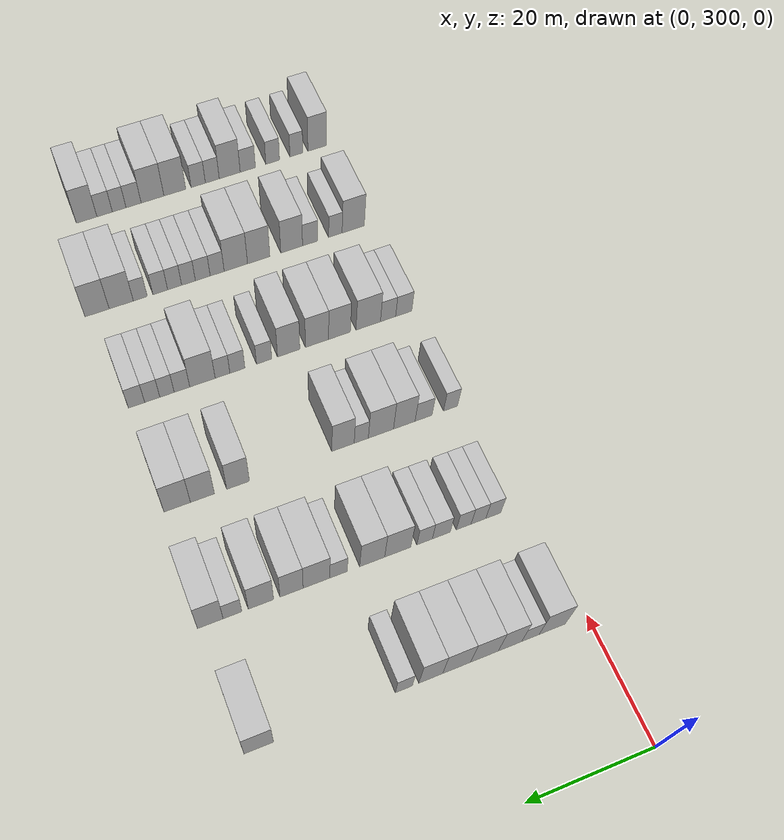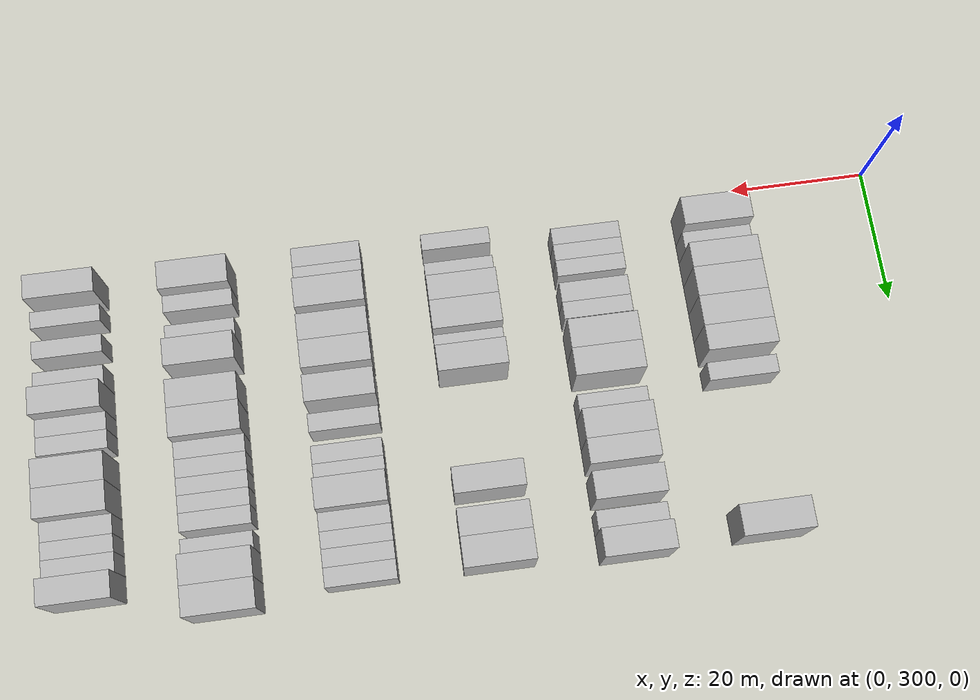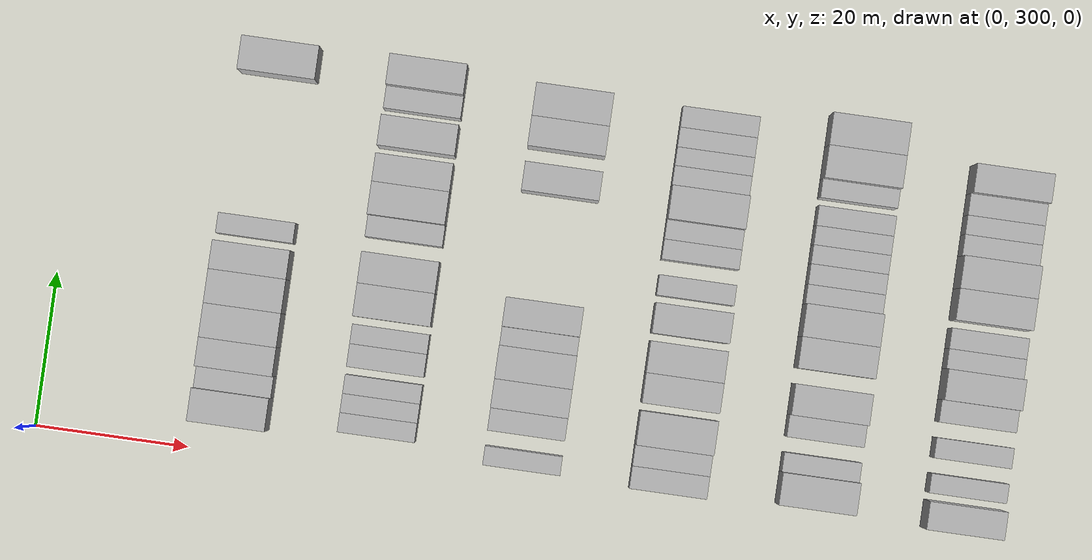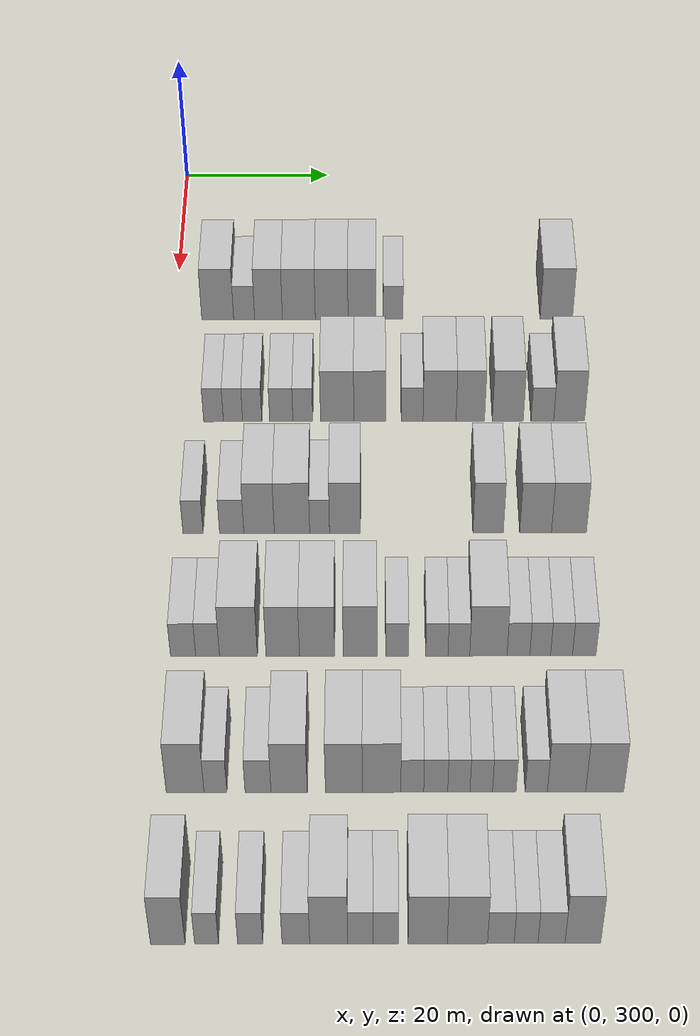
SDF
<sdf version="1.6">
 <world name="default">
  <model name="building_155">
   <static>1</static>
   <pose>25.0000 305.7245 0 0.000000 0.000000 0.000000</pose>
   <link name="link">
    <pose>0 0 4.50 0 0 0</pose>
    <collision name="collision"><geometry><box><size>10.0000 4.2542 9.0000</size></box></geometry></collision>
    <visual name="visual">
     <cast_shadows>0</cast_shadows>
     <geometry><box><size>10.0000 4.2542 9.0000</size></box></geometry>
     <material>
      <script>
       <uri>model://HANNAS_wall/materials/scripts</uri>
       <uri>model://HANNAS_wall/materials/textures</uri>
       <name>vrc/HANNAS_wall</name>
      </script>
     </material>
    </visual>
   </link>
  </model>
  <model name="building_156">
   <static>1</static>
   <pose>25.0000 309.2533 0 0.000000 0.000000 0.000000</pose>
   <link name="link">
    <pose>0 0 3.00 0 0 0</pose>
    <collision name="collision"><geometry><box><size>10.0000 2.8034 6.0000</size></box></geometry></collision>
    <visual name="visual">
     <cast_shadows>0</cast_shadows>
     <geometry><box><size>10.0000 2.8034 6.0000</size></box></geometry>
     <material>
      <script>
       <uri>model://HANNAS_wall/materials/scripts</uri>
       <uri>model://HANNAS_wall/materials/textures</uri>
       <name>vrc/HANNAS_wall</name>
      </script>
     </material>
    </visual>
   </link>
  </model>
  <model name="building_157">
   <static>1</static>
   <pose>25.0000 312.5177 0 0.000000 0.000000 0.000000</pose>
   <link name="link">
    <pose>0 0 4.50 0 0 0</pose>
    <collision name="collision"><geometry><box><size>10.0000 3.7255 9.0000</size></box></geometry></collision>
    <visual name="visual">
     <cast_shadows>0</cast_shadows>
     <geometry><box><size>10.0000 3.7255 9.0000</size></box></geometry>
     <material>
      <script>
       <uri>model://HANNAS_wall/materials/scripts</uri>
       <uri>model://HANNAS_wall/materials/textures</uri>
       <name>vrc/HANNAS_wall</name>
      </script>
     </material>
    </visual>
   </link>
  </model>
  <model name="building_158">
   <static>1</static>
   <pose>25.0000 316.5764 0 0.000000 0.000000 0.000000</pose>
   <link name="link">
    <pose>0 0 4.50 0 0 0</pose>
    <collision name="collision"><geometry><box><size>10.0000 4.3919 9.0000</size></box></geometry></collision>
    <visual name="visual">
     <cast_shadows>0</cast_shadows>
     <geometry><box><size>10.0000 4.3919 9.0000</size></box></geometry>
     <material>
      <script>
       <uri>model://HANNAS_wall/materials/scripts</uri>
       <uri>model://HANNAS_wall/materials/textures</uri>
       <name>vrc/HANNAS_wall</name>
      </script>
     </material>
    </visual>
   </link>
  </model>
  <model name="building_159">
   <static>1</static>
   <pose>25.0000 320.9627 0 0.000000 0.000000 0.000000</pose>
   <link name="link">
    <pose>0 0 4.50 0 0 0</pose>
    <collision name="collision"><geometry><box><size>10.0000 4.3807 9.0000</size></box></geometry></collision>
    <visual name="visual">
     <cast_shadows>0</cast_shadows>
     <geometry><box><size>10.0000 4.3807 9.0000</size></box></geometry>
     <material>
      <script>
       <uri>model://HANNAS_wall/materials/scripts</uri>
       <uri>model://HANNAS_wall/materials/textures</uri>
       <name>vrc/HANNAS_wall</name>
      </script>
     </material>
    </visual>
   </link>
  </model>
  <model name="building_160">
   <static>1</static>
   <pose>25.0000 325.0063 0 0.000000 0.000000 0.000000</pose>
   <link name="link">
    <pose>0 0 4.50 0 0 0</pose>
    <collision name="collision"><geometry><box><size>10.0000 3.7066 9.0000</size></box></geometry></collision>
    <visual name="visual">
     <cast_shadows>0</cast_shadows>
     <geometry><box><size>10.0000 3.7066 9.0000</size></box></geometry>
     <material>
      <script>
       <uri>model://HANNAS_wall/materials/scripts</uri>
       <uri>model://HANNAS_wall/materials/textures</uri>
       <name>vrc/HANNAS_wall</name>
      </script>
     </material>
    </visual>
   </link>
  </model>
  <model name="building_161">
   <static>1</static>
   <pose>25.0000 329.1764 0 0.000000 0.000000 0.000000</pose>
   <link name="link">
    <pose>0 0 3.00 0 0 0</pose>
    <collision name="collision"><geometry><box><size>10.0000 2.6334 6.0000</size></box></geometry></collision>
    <visual name="visual">
     <cast_shadows>0</cast_shadows>
     <geometry><box><size>10.0000 2.6334 6.0000</size></box></geometry>
     <material>
      <script>
       <uri>model://HANNAS_wall/materials/scripts</uri>
       <uri>model://HANNAS_wall/materials/textures</uri>
       <name>vrc/HANNAS_wall</name>
      </script>
     </material>
    </visual>
   </link>
  </model>
  <model name="building_162">
   <static>1</static>
   <pose>25.0000 351.0022 0 0.000000 0.000000 0.000000</pose>
   <link name="link">
    <pose>0 0 4.50 0 0 0</pose>
    <collision name="collision"><geometry><box><size>10.0000 4.3394 9.0000</size></box></geometry></collision>
    <visual name="visual">
     <cast_shadows>0</cast_shadows>
     <geometry><box><size>10.0000 4.3394 9.0000</size></box></geometry>
     <material>
      <script>
       <uri>model://HANNAS_wall/materials/scripts</uri>
       <uri>model://HANNAS_wall/materials/textures</uri>
       <name>vrc/HANNAS_wall</name>
      </script>
     </material>
    </visual>
   </link>
  </model>
  <model name="building_336">
   <static>1</static>
   <pose>44.0000 306.0727 0 0.000000 0.000000 0.000000</pose>
   <link name="link">
    <pose>0 0 3.00 0 0 0</pose>
    <collision name="collision"><geometry><box><size>10.0000 2.5162 6.0000</size></box></geometry></collision>
    <visual name="visual">
     <cast_shadows>0</cast_shadows>
     <geometry><box><size>10.0000 2.5162 6.0000</size></box></geometry>
     <material>
      <script>
       <uri>model://HANNAS_wall/materials/scripts</uri>
       <uri>model://HANNAS_wall/materials/textures</uri>
       <name>vrc/HANNAS_wall</name>
      </script>
     </material>
    </visual>
   </link>
  </model>
  <model name="building_337">
   <static>1</static>
   <pose>44.0000 308.5622 0 0.000000 0.000000 0.000000</pose>
   <link name="link">
    <pose>0 0 3.00 0 0 0</pose>
    <collision name="collision"><geometry><box><size>10.0000 2.4627 6.0000</size></box></geometry></collision>
    <visual name="visual">
     <cast_shadows>0</cast_shadows>
     <geometry><box><size>10.0000 2.4627 6.0000</size></box></geometry>
     <material>
      <script>
       <uri>model://HANNAS_wall/materials/scripts</uri>
       <uri>model://HANNAS_wall/materials/textures</uri>
       <name>vrc/HANNAS_wall</name>
      </script>
     </material>
    </visual>
   </link>
  </model>
  <model name="building_338">
   <static>1</static>
   <pose>44.0000 311.0226 0 0.000000 0.000000 0.000000</pose>
   <link name="link">
    <pose>0 0 3.00 0 0 0</pose>
    <collision name="collision"><geometry><box><size>10.0000 2.4579 6.0000</size></box></geometry></collision>
    <visual name="visual">
     <cast_shadows>0</cast_shadows>
     <geometry><box><size>10.0000 2.4579 6.0000</size></box></geometry>
     <material>
      <script>
       <uri>model://HANNAS_wall/materials/scripts</uri>
       <uri>model://HANNAS_wall/materials/textures</uri>
       <name>vrc/HANNAS_wall</name>
      </script>
     </material>
    </visual>
   </link>
  </model>
  <model name="building_339">
   <static>1</static>
   <pose>44.0000 314.7369 0 0.000000 0.000000 0.000000</pose>
   <link name="link">
    <pose>0 0 3.00 0 0 0</pose>
    <collision name="collision"><geometry><box><size>10.0000 2.9708 6.0000</size></box></geometry></collision>
    <visual name="visual">
     <cast_shadows>0</cast_shadows>
     <geometry><box><size>10.0000 2.9708 6.0000</size></box></geometry>
     <material>
      <script>
       <uri>model://HANNAS_wall/materials/scripts</uri>
       <uri>model://HANNAS_wall/materials/textures</uri>
       <name>vrc/HANNAS_wall</name>
      </script>
     </material>
    </visual>
   </link>
  </model>
  <model name="building_340">
   <static>1</static>
   <pose>44.0000 317.4918 0 0.000000 0.000000 0.000000</pose>
   <link name="link">
    <pose>0 0 3.00 0 0 0</pose>
    <collision name="collision"><geometry><box><size>10.0000 2.5388 6.0000</size></box></geometry></collision>
    <visual name="visual">
     <cast_shadows>0</cast_shadows>
     <geometry><box><size>10.0000 2.5388 6.0000</size></box></geometry>
     <material>
      <script>
       <uri>model://HANNAS_wall/materials/scripts</uri>
       <uri>model://HANNAS_wall/materials/textures</uri>
       <name>vrc/HANNAS_wall</name>
      </script>
     </material>
    </visual>
   </link>
  </model>
  <model name="building_341">
   <static>1</static>
   <pose>44.0000 321.8897 0 0.000000 0.000000 0.000000</pose>
   <link name="link">
    <pose>0 0 4.50 0 0 0</pose>
    <collision name="collision"><geometry><box><size>10.0000 4.2570 9.0000</size></box></geometry></collision>
    <visual name="visual">
     <cast_shadows>0</cast_shadows>
     <geometry><box><size>10.0000 4.2570 9.0000</size></box></geometry>
     <material>
      <script>
       <uri>model://HANNAS_wall/materials/scripts</uri>
       <uri>model://HANNAS_wall/materials/textures</uri>
       <name>vrc/HANNAS_wall</name>
      </script>
     </material>
    </visual>
   </link>
  </model>
  <model name="building_342">
   <static>1</static>
   <pose>44.0000 326.0437 0 0.000000 0.000000 0.000000</pose>
   <link name="link">
    <pose>0 0 4.50 0 0 0</pose>
    <collision name="collision"><geometry><box><size>10.0000 4.0511 9.0000</size></box></geometry></collision>
    <visual name="visual">
     <cast_shadows>0</cast_shadows>
     <geometry><box><size>10.0000 4.0511 9.0000</size></box></geometry>
     <material>
      <script>
       <uri>model://HANNAS_wall/materials/scripts</uri>
       <uri>model://HANNAS_wall/materials/textures</uri>
       <name>vrc/HANNAS_wall</name>
      </script>
     </material>
    </visual>
   </link>
  </model>
  <model name="building_343">
   <static>1</static>
   <pose>44.0000 331.4626 0 0.000000 0.000000 0.000000</pose>
   <link name="link">
    <pose>0 0 3.00 0 0 0</pose>
    <collision name="collision"><geometry><box><size>10.0000 2.7867 6.0000</size></box></geometry></collision>
    <visual name="visual">
     <cast_shadows>0</cast_shadows>
     <geometry><box><size>10.0000 2.7867 6.0000</size></box></geometry>
     <material>
      <script>
       <uri>model://HANNAS_wall/materials/scripts</uri>
       <uri>model://HANNAS_wall/materials/textures</uri>
       <name>vrc/HANNAS_wall</name>
      </script>
     </material>
    </visual>
   </link>
  </model>
  <model name="building_344">
   <static>1</static>
   <pose>44.0000 334.9705 0 0.000000 0.000000 0.000000</pose>
   <link name="link">
    <pose>0 0 4.50 0 0 0</pose>
    <collision name="collision"><geometry><box><size>10.0000 4.2290 9.0000</size></box></geometry></collision>
    <visual name="visual">
     <cast_shadows>0</cast_shadows>
     <geometry><box><size>10.0000 4.2290 9.0000</size></box></geometry>
     <material>
      <script>
       <uri>model://HANNAS_wall/materials/scripts</uri>
       <uri>model://HANNAS_wall/materials/textures</uri>
       <name>vrc/HANNAS_wall</name>
      </script>
     </material>
    </visual>
   </link>
  </model>
  <model name="building_345">
   <static>1</static>
   <pose>44.0000 338.9031 0 0.000000 0.000000 0.000000</pose>
   <link name="link">
    <pose>0 0 4.50 0 0 0</pose>
    <collision name="collision"><geometry><box><size>10.0000 3.6362 9.0000</size></box></geometry></collision>
    <visual name="visual">
     <cast_shadows>0</cast_shadows>
     <geometry><box><size>10.0000 3.6362 9.0000</size></box></geometry>
     <material>
      <script>
       <uri>model://HANNAS_wall/materials/scripts</uri>
       <uri>model://HANNAS_wall/materials/textures</uri>
       <name>vrc/HANNAS_wall</name>
      </script>
     </material>
    </visual>
   </link>
  </model>
  <model name="building_346">
   <static>1</static>
   <pose>44.0000 343.6994 0 0.000000 0.000000 0.000000</pose>
   <link name="link">
    <pose>0 0 4.50 0 0 0</pose>
    <collision name="collision"><geometry><box><size>10.0000 3.9564 9.0000</size></box></geometry></collision>
    <visual name="visual">
     <cast_shadows>0</cast_shadows>
     <geometry><box><size>10.0000 3.9564 9.0000</size></box></geometry>
     <material>
      <script>
       <uri>model://HANNAS_wall/materials/scripts</uri>
       <uri>model://HANNAS_wall/materials/textures</uri>
       <name>vrc/HANNAS_wall</name>
      </script>
     </material>
    </visual>
   </link>
  </model>
  <model name="building_347">
   <static>1</static>
   <pose>44.0000 348.1218 0 0.000000 0.000000 0.000000</pose>
   <link name="link">
    <pose>0 0 3.00 0 0 0</pose>
    <collision name="collision"><geometry><box><size>10.0000 2.8884 6.0000</size></box></geometry></collision>
    <visual name="visual">
     <cast_shadows>0</cast_shadows>
     <geometry><box><size>10.0000 2.8884 6.0000</size></box></geometry>
     <material>
      <script>
       <uri>model://HANNAS_wall/materials/scripts</uri>
       <uri>model://HANNAS_wall/materials/textures</uri>
       <name>vrc/HANNAS_wall</name>
      </script>
     </material>
    </visual>
   </link>
  </model>
  <model name="building_348">
   <static>1</static>
   <pose>44.0000 351.5423 0 0.000000 0.000000 0.000000</pose>
   <link name="link">
    <pose>0 0 4.50 0 0 0</pose>
    <collision name="collision"><geometry><box><size>10.0000 3.9525 9.0000</size></box></geometry></collision>
    <visual name="visual">
     <cast_shadows>0</cast_shadows>
     <geometry><box><size>10.0000 3.9525 9.0000</size></box></geometry>
     <material>
      <script>
       <uri>model://HANNAS_wall/materials/scripts</uri>
       <uri>model://HANNAS_wall/materials/textures</uri>
       <name>vrc/HANNAS_wall</name>
      </script>
     </material>
    </visual>
   </link>
  </model>
  <model name="building_513">
   <static>1</static>
   <pose>63.0000 304.4875 0 0.000000 0.000000 0.000000</pose>
   <link name="link">
    <pose>0 0 3.00 0 0 0</pose>
    <collision name="collision"><geometry><box><size>10.0000 2.4692 6.0000</size></box></geometry></collision>
    <visual name="visual">
     <cast_shadows>0</cast_shadows>
     <geometry><box><size>10.0000 2.4692 6.0000</size></box></geometry>
     <material>
      <script>
       <uri>model://HANNAS_wall/materials/scripts</uri>
       <uri>model://HANNAS_wall/materials/textures</uri>
       <name>vrc/HANNAS_wall</name>
      </script>
     </material>
    </visual>
   </link>
  </model>
  <model name="building_514">
   <static>1</static>
   <pose>63.0000 309.2000 0 0.000000 0.000000 0.000000</pose>
   <link name="link">
    <pose>0 0 3.00 0 0 0</pose>
    <collision name="collision"><geometry><box><size>10.0000 2.9557 6.0000</size></box></geometry></collision>
    <visual name="visual">
     <cast_shadows>0</cast_shadows>
     <geometry><box><size>10.0000 2.9557 6.0000</size></box></geometry>
     <material>
      <script>
       <uri>model://HANNAS_wall/materials/scripts</uri>
       <uri>model://HANNAS_wall/materials/textures</uri>
       <name>vrc/HANNAS_wall</name>
      </script>
     </material>
    </visual>
   </link>
  </model>
  <model name="building_515">
   <static>1</static>
   <pose>63.0000 312.5431 0 0.000000 0.000000 0.000000</pose>
   <link name="link">
    <pose>0 0 4.50 0 0 0</pose>
    <collision name="collision"><geometry><box><size>10.0000 3.7305 9.0000</size></box></geometry></collision>
    <visual name="visual">
     <cast_shadows>0</cast_shadows>
     <geometry><box><size>10.0000 3.7305 9.0000</size></box></geometry>
     <material>
      <script>
       <uri>model://HANNAS_wall/materials/scripts</uri>
       <uri>model://HANNAS_wall/materials/textures</uri>
       <name>vrc/HANNAS_wall</name>
      </script>
     </material>
    </visual>
   </link>
  </model>
  <model name="building_516">
   <static>1</static>
   <pose>63.0000 316.5634 0 0.000000 0.000000 0.000000</pose>
   <link name="link">
    <pose>0 0 4.50 0 0 0</pose>
    <collision name="collision"><geometry><box><size>10.0000 4.3101 9.0000</size></box></geometry></collision>
    <visual name="visual">
     <cast_shadows>0</cast_shadows>
     <geometry><box><size>10.0000 4.3101 9.0000</size></box></geometry>
     <material>
      <script>
       <uri>model://HANNAS_wall/materials/scripts</uri>
       <uri>model://HANNAS_wall/materials/textures</uri>
       <name>vrc/HANNAS_wall</name>
      </script>
     </material>
    </visual>
   </link>
  </model>
  <model name="building_517">
   <static>1</static>
   <pose>63.0000 319.9247 0 0.000000 0.000000 0.000000</pose>
   <link name="link">
    <pose>0 0 3.00 0 0 0</pose>
    <collision name="collision"><geometry><box><size>10.0000 2.4125 6.0000</size></box></geometry></collision>
    <visual name="visual">
     <cast_shadows>0</cast_shadows>
     <geometry><box><size>10.0000 2.4125 6.0000</size></box></geometry>
     <material>
      <script>
       <uri>model://HANNAS_wall/materials/scripts</uri>
       <uri>model://HANNAS_wall/materials/textures</uri>
       <name>vrc/HANNAS_wall</name>
      </script>
     </material>
    </visual>
   </link>
  </model>
  <model name="building_518">
   <static>1</static>
   <pose>63.0000 323.0245 0 0.000000 0.000000 0.000000</pose>
   <link name="link">
    <pose>0 0 4.50 0 0 0</pose>
    <collision name="collision"><geometry><box><size>10.0000 3.7870 9.0000</size></box></geometry></collision>
    <visual name="visual">
     <cast_shadows>0</cast_shadows>
     <geometry><box><size>10.0000 3.7870 9.0000</size></box></geometry>
     <material>
      <script>
       <uri>model://HANNAS_wall/materials/scripts</uri>
       <uri>model://HANNAS_wall/materials/textures</uri>
       <name>vrc/HANNAS_wall</name>
      </script>
     </material>
    </visual>
   </link>
  </model>
  <model name="building_519">
   <static>1</static>
   <pose>63.0000 340.4865 0 0.000000 0.000000 0.000000</pose>
   <link name="link">
    <pose>0 0 4.50 0 0 0</pose>
    <collision name="collision"><geometry><box><size>10.0000 3.7123 9.0000</size></box></geometry></collision>
    <visual name="visual">
     <cast_shadows>0</cast_shadows>
     <geometry><box><size>10.0000 3.7123 9.0000</size></box></geometry>
     <material>
      <script>
       <uri>model://HANNAS_wall/materials/scripts</uri>
       <uri>model://HANNAS_wall/materials/textures</uri>
       <name>vrc/HANNAS_wall</name>
      </script>
     </material>
    </visual>
   </link>
  </model>
  <model name="building_520">
   <static>1</static>
   <pose>63.0000 346.2822 0 0.000000 0.000000 0.000000</pose>
   <link name="link">
    <pose>0 0 4.50 0 0 0</pose>
    <collision name="collision"><geometry><box><size>10.0000 3.8791 9.0000</size></box></geometry></collision>
    <visual name="visual">
     <cast_shadows>0</cast_shadows>
     <geometry><box><size>10.0000 3.8791 9.0000</size></box></geometry>
     <material>
      <script>
       <uri>model://HANNAS_wall/materials/scripts</uri>
       <uri>model://HANNAS_wall/materials/textures</uri>
       <name>vrc/HANNAS_wall</name>
      </script>
     </material>
    </visual>
   </link>
  </model>
  <model name="building_521">
   <static>1</static>
   <pose>63.0000 350.3517 0 0.000000 0.000000 0.000000</pose>
   <link name="link">
    <pose>0 0 4.50 0 0 0</pose>
    <collision name="collision"><geometry><box><size>10.0000 4.2598 9.0000</size></box></geometry></collision>
    <visual name="visual">
     <cast_shadows>0</cast_shadows>
     <geometry><box><size>10.0000 4.2598 9.0000</size></box></geometry>
     <material>
      <script>
       <uri>model://HANNAS_wall/materials/scripts</uri>
       <uri>model://HANNAS_wall/materials/textures</uri>
       <name>vrc/HANNAS_wall</name>
      </script>
     </material>
    </visual>
   </link>
  </model>
  <model name="building_657">
   <static>1</static>
   <pose>82.0000 304.3663 0 0.000000 0.000000 0.000000</pose>
   <link name="link">
    <pose>0 0 3.00 0 0 0</pose>
    <collision name="collision"><geometry><box><size>10.0000 2.9287 6.0000</size></box></geometry></collision>
    <visual name="visual">
     <cast_shadows>0</cast_shadows>
     <geometry><box><size>10.0000 2.9287 6.0000</size></box></geometry>
     <material>
      <script>
       <uri>model://HANNAS_wall/materials/scripts</uri>
       <uri>model://HANNAS_wall/materials/textures</uri>
       <name>vrc/HANNAS_wall</name>
      </script>
     </material>
    </visual>
   </link>
  </model>
  <model name="building_658">
   <static>1</static>
   <pose>82.0000 307.2067 0 0.000000 0.000000 0.000000</pose>
   <link name="link">
    <pose>0 0 3.00 0 0 0</pose>
    <collision name="collision"><geometry><box><size>10.0000 2.7522 6.0000</size></box></geometry></collision>
    <visual name="visual">
     <cast_shadows>0</cast_shadows>
     <geometry><box><size>10.0000 2.7522 6.0000</size></box></geometry>
     <material>
      <script>
       <uri>model://HANNAS_wall/materials/scripts</uri>
       <uri>model://HANNAS_wall/materials/textures</uri>
       <name>vrc/HANNAS_wall</name>
      </script>
     </material>
    </visual>
   </link>
  </model>
  <model name="building_659">
   <static>1</static>
   <pose>82.0000 310.7891 0 0.000000 0.000000 0.000000</pose>
   <link name="link">
    <pose>0 0 4.50 0 0 0</pose>
    <collision name="collision"><geometry><box><size>10.0000 4.4125 9.0000</size></box></geometry></collision>
    <visual name="visual">
     <cast_shadows>0</cast_shadows>
     <geometry><box><size>10.0000 4.4125 9.0000</size></box></geometry>
     <material>
      <script>
       <uri>model://HANNAS_wall/materials/scripts</uri>
       <uri>model://HANNAS_wall/materials/textures</uri>
       <name>vrc/HANNAS_wall</name>
      </script>
     </material>
    </visual>
   </link>
  </model>
  <model name="building_660">
   <static>1</static>
   <pose>82.0000 315.9378 0 0.000000 0.000000 0.000000</pose>
   <link name="link">
    <pose>0 0 4.50 0 0 0</pose>
    <collision name="collision"><geometry><box><size>10.0000 3.8849 9.0000</size></box></geometry></collision>
    <visual name="visual">
     <cast_shadows>0</cast_shadows>
     <geometry><box><size>10.0000 3.8849 9.0000</size></box></geometry>
     <material>
      <script>
       <uri>model://HANNAS_wall/materials/scripts</uri>
       <uri>model://HANNAS_wall/materials/textures</uri>
       <name>vrc/HANNAS_wall</name>
      </script>
     </material>
    </visual>
   </link>
  </model>
  <model name="building_661">
   <static>1</static>
   <pose>82.0000 319.9224 0 0.000000 0.000000 0.000000</pose>
   <link name="link">
    <pose>0 0 4.50 0 0 0</pose>
    <collision name="collision"><geometry><box><size>10.0000 4.0842 9.0000</size></box></geometry></collision>
    <visual name="visual">
     <cast_shadows>0</cast_shadows>
     <geometry><box><size>10.0000 4.0842 9.0000</size></box></geometry>
     <material>
      <script>
       <uri>model://HANNAS_wall/materials/scripts</uri>
       <uri>model://HANNAS_wall/materials/textures</uri>
       <name>vrc/HANNAS_wall</name>
      </script>
     </material>
    </visual>
   </link>
  </model>
  <model name="building_662">
   <static>1</static>
   <pose>82.0000 324.9201 0 0.000000 0.000000 0.000000</pose>
   <link name="link">
    <pose>0 0 4.50 0 0 0</pose>
    <collision name="collision"><geometry><box><size>10.0000 3.9114 9.0000</size></box></geometry></collision>
    <visual name="visual">
     <cast_shadows>0</cast_shadows>
     <geometry><box><size>10.0000 3.9114 9.0000</size></box></geometry>
     <material>
      <script>
       <uri>model://HANNAS_wall/materials/scripts</uri>
       <uri>model://HANNAS_wall/materials/textures</uri>
       <name>vrc/HANNAS_wall</name>
      </script>
     </material>
    </visual>
   </link>
  </model>
  <model name="building_663">
   <static>1</static>
   <pose>82.0000 329.2005 0 0.000000 0.000000 0.000000</pose>
   <link name="link">
    <pose>0 0 3.00 0 0 0</pose>
    <collision name="collision"><geometry><box><size>10.0000 2.6493 6.0000</size></box></geometry></collision>
    <visual name="visual">
     <cast_shadows>0</cast_shadows>
     <geometry><box><size>10.0000 2.6493 6.0000</size></box></geometry>
     <material>
      <script>
       <uri>model://HANNAS_wall/materials/scripts</uri>
       <uri>model://HANNAS_wall/materials/textures</uri>
       <name>vrc/HANNAS_wall</name>
      </script>
     </material>
    </visual>
   </link>
  </model>
  <model name="building_664">
   <static>1</static>
   <pose>82.0000 333.8204 0 0.000000 0.000000 0.000000</pose>
   <link name="link">
    <pose>0 0 3.00 0 0 0</pose>
    <collision name="collision"><geometry><box><size>10.0000 2.5904 6.0000</size></box></geometry></collision>
    <visual name="visual">
     <cast_shadows>0</cast_shadows>
     <geometry><box><size>10.0000 2.5904 6.0000</size></box></geometry>
     <material>
      <script>
       <uri>model://HANNAS_wall/materials/scripts</uri>
       <uri>model://HANNAS_wall/materials/textures</uri>
       <name>vrc/HANNAS_wall</name>
      </script>
     </material>
    </visual>
   </link>
  </model>
  <model name="building_665">
   <static>1</static>
   <pose>82.0000 336.3810 0 0.000000 0.000000 0.000000</pose>
   <link name="link">
    <pose>0 0 3.00 0 0 0</pose>
    <collision name="collision"><geometry><box><size>10.0000 2.5309 6.0000</size></box></geometry></collision>
    <visual name="visual">
     <cast_shadows>0</cast_shadows>
     <geometry><box><size>10.0000 2.5309 6.0000</size></box></geometry>
     <material>
      <script>
       <uri>model://HANNAS_wall/materials/scripts</uri>
       <uri>model://HANNAS_wall/materials/textures</uri>
       <name>vrc/HANNAS_wall</name>
      </script>
     </material>
    </visual>
   </link>
  </model>
  <model name="building_666">
   <static>1</static>
   <pose>82.0000 339.8150 0 0.000000 0.000000 0.000000</pose>
   <link name="link">
    <pose>0 0 4.50 0 0 0</pose>
    <collision name="collision"><geometry><box><size>10.0000 4.3370 9.0000</size></box></geometry></collision>
    <visual name="visual">
     <cast_shadows>0</cast_shadows>
     <geometry><box><size>10.0000 4.3370 9.0000</size></box></geometry>
     <material>
      <script>
       <uri>model://HANNAS_wall/materials/scripts</uri>
       <uri>model://HANNAS_wall/materials/textures</uri>
       <name>vrc/HANNAS_wall</name>
      </script>
     </material>
    </visual>
   </link>
  </model>
  <model name="building_667">
   <static>1</static>
   <pose>82.0000 343.3057 0 0.000000 0.000000 0.000000</pose>
   <link name="link">
    <pose>0 0 3.00 0 0 0</pose>
    <collision name="collision"><geometry><box><size>10.0000 2.6445 6.0000</size></box></geometry></collision>
    <visual name="visual">
     <cast_shadows>0</cast_shadows>
     <geometry><box><size>10.0000 2.6445 6.0000</size></box></geometry>
     <material>
      <script>
       <uri>model://HANNAS_wall/materials/scripts</uri>
       <uri>model://HANNAS_wall/materials/textures</uri>
       <name>vrc/HANNAS_wall</name>
      </script>
     </material>
    </visual>
   </link>
  </model>
  <model name="building_668">
   <static>1</static>
   <pose>82.0000 345.8326 0 0.000000 0.000000 0.000000</pose>
   <link name="link">
    <pose>0 0 3.00 0 0 0</pose>
    <collision name="collision"><geometry><box><size>10.0000 2.4094 6.0000</size></box></geometry></collision>
    <visual name="visual">
     <cast_shadows>0</cast_shadows>
     <geometry><box><size>10.0000 2.4094 6.0000</size></box></geometry>
     <material>
      <script>
       <uri>model://HANNAS_wall/materials/scripts</uri>
       <uri>model://HANNAS_wall/materials/textures</uri>
       <name>vrc/HANNAS_wall</name>
      </script>
     </material>
    </visual>
   </link>
  </model>
  <model name="building_669">
   <static>1</static>
   <pose>82.0000 348.3094 0 0.000000 0.000000 0.000000</pose>
   <link name="link">
    <pose>0 0 3.00 0 0 0</pose>
    <collision name="collision"><geometry><box><size>10.0000 2.5441 6.0000</size></box></geometry></collision>
    <visual name="visual">
     <cast_shadows>0</cast_shadows>
     <geometry><box><size>10.0000 2.5441 6.0000</size></box></geometry>
     <material>
      <script>
       <uri>model://HANNAS_wall/materials/scripts</uri>
       <uri>model://HANNAS_wall/materials/textures</uri>
       <name>vrc/HANNAS_wall</name>
      </script>
     </material>
    </visual>
   </link>
  </model>
  <model name="building_670">
   <static>1</static>
   <pose>82.0000 350.9490 0 0.000000 0.000000 0.000000</pose>
   <link name="link">
    <pose>0 0 3.00 0 0 0</pose>
    <collision name="collision"><geometry><box><size>10.0000 2.7351 6.0000</size></box></geometry></collision>
    <visual name="visual">
     <cast_shadows>0</cast_shadows>
     <geometry><box><size>10.0000 2.7351 6.0000</size></box></geometry>
     <material>
      <script>
       <uri>model://HANNAS_wall/materials/scripts</uri>
       <uri>model://HANNAS_wall/materials/textures</uri>
       <name>vrc/HANNAS_wall</name>
      </script>
     </material>
    </visual>
   </link>
  </model>
  <model name="building_831">
   <static>1</static>
   <pose>101.0000 305.6730 0 0.000000 0.000000 0.000000</pose>
   <link name="link">
    <pose>0 0 4.50 0 0 0</pose>
    <collision name="collision"><geometry><box><size>10.0000 4.1735 9.0000</size></box></geometry></collision>
    <visual name="visual">
     <cast_shadows>0</cast_shadows>
     <geometry><box><size>10.0000 4.1735 9.0000</size></box></geometry>
     <material>
      <script>
       <uri>model://HANNAS_wall/materials/scripts</uri>
       <uri>model://HANNAS_wall/materials/textures</uri>
       <name>vrc/HANNAS_wall</name>
      </script>
     </material>
    </visual>
   </link>
  </model>
  <model name="building_832">
   <static>1</static>
   <pose>101.0000 309.0195 0 0.000000 0.000000 0.000000</pose>
   <link name="link">
    <pose>0 0 3.00 0 0 0</pose>
    <collision name="collision"><geometry><box><size>10.0000 2.5196 6.0000</size></box></geometry></collision>
    <visual name="visual">
     <cast_shadows>0</cast_shadows>
     <geometry><box><size>10.0000 2.5196 6.0000</size></box></geometry>
     <material>
      <script>
       <uri>model://HANNAS_wall/materials/scripts</uri>
       <uri>model://HANNAS_wall/materials/textures</uri>
       <name>vrc/HANNAS_wall</name>
      </script>
     </material>
    </visual>
   </link>
  </model>
  <model name="building_833">
   <static>1</static>
   <pose>101.0000 313.7081 0 0.000000 0.000000 0.000000</pose>
   <link name="link">
    <pose>0 0 3.00 0 0 0</pose>
    <collision name="collision"><geometry><box><size>10.0000 2.8575 6.0000</size></box></geometry></collision>
    <visual name="visual">
     <cast_shadows>0</cast_shadows>
     <geometry><box><size>10.0000 2.8575 6.0000</size></box></geometry>
     <material>
      <script>
       <uri>model://HANNAS_wall/materials/scripts</uri>
       <uri>model://HANNAS_wall/materials/textures</uri>
       <name>vrc/HANNAS_wall</name>
      </script>
     </material>
    </visual>
   </link>
  </model>
  <model name="building_834">
   <static>1</static>
   <pose>101.0000 317.1416 0 0.000000 0.000000 0.000000</pose>
   <link name="link">
    <pose>0 0 4.50 0 0 0</pose>
    <collision name="collision"><geometry><box><size>10.0000 4.0095 9.0000</size></box></geometry></collision>
    <visual name="visual">
     <cast_shadows>0</cast_shadows>
     <geometry><box><size>10.0000 4.0095 9.0000</size></box></geometry>
     <material>
      <script>
       <uri>model://HANNAS_wall/materials/scripts</uri>
       <uri>model://HANNAS_wall/materials/textures</uri>
       <name>vrc/HANNAS_wall</name>
      </script>
     </material>
    </visual>
   </link>
  </model>
  <model name="building_835">
   <static>1</static>
   <pose>101.0000 323.1811 0 0.000000 0.000000 0.000000</pose>
   <link name="link">
    <pose>0 0 4.50 0 0 0</pose>
    <collision name="collision"><geometry><box><size>10.0000 4.0695 9.0000</size></box></geometry></collision>
    <visual name="visual">
     <cast_shadows>0</cast_shadows>
     <geometry><box><size>10.0000 4.0695 9.0000</size></box></geometry>
     <material>
      <script>
       <uri>model://HANNAS_wall/materials/scripts</uri>
       <uri>model://HANNAS_wall/materials/textures</uri>
       <name>vrc/HANNAS_wall</name>
      </script>
     </material>
    </visual>
   </link>
  </model>
  <model name="building_836">
   <static>1</static>
   <pose>101.0000 327.3324 0 0.000000 0.000000 0.000000</pose>
   <link name="link">
    <pose>0 0 4.50 0 0 0</pose>
    <collision name="collision"><geometry><box><size>10.0000 4.2331 9.0000</size></box></geometry></collision>
    <visual name="visual">
     <cast_shadows>0</cast_shadows>
     <geometry><box><size>10.0000 4.2331 9.0000</size></box></geometry>
     <material>
      <script>
       <uri>model://HANNAS_wall/materials/scripts</uri>
       <uri>model://HANNAS_wall/materials/textures</uri>
       <name>vrc/HANNAS_wall</name>
      </script>
     </material>
    </visual>
   </link>
  </model>
  <model name="building_837">
   <static>1</static>
   <pose>101.0000 330.7132 0 0.000000 0.000000 0.000000</pose>
   <link name="link">
    <pose>0 0 3.00 0 0 0</pose>
    <collision name="collision"><geometry><box><size>10.0000 2.5285 6.0000</size></box></geometry></collision>
    <visual name="visual">
     <cast_shadows>0</cast_shadows>
     <geometry><box><size>10.0000 2.5285 6.0000</size></box></geometry>
     <material>
      <script>
       <uri>model://HANNAS_wall/materials/scripts</uri>
       <uri>model://HANNAS_wall/materials/textures</uri>
       <name>vrc/HANNAS_wall</name>
      </script>
     </material>
    </visual>
   </link>
  </model>
  <model name="building_838">
   <static>1</static>
   <pose>101.0000 333.3001 0 0.000000 0.000000 0.000000</pose>
   <link name="link">
    <pose>0 0 3.00 0 0 0</pose>
    <collision name="collision"><geometry><box><size>10.0000 2.6453 6.0000</size></box></geometry></collision>
    <visual name="visual">
     <cast_shadows>0</cast_shadows>
     <geometry><box><size>10.0000 2.6453 6.0000</size></box></geometry>
     <material>
      <script>
       <uri>model://HANNAS_wall/materials/scripts</uri>
       <uri>model://HANNAS_wall/materials/textures</uri>
       <name>vrc/HANNAS_wall</name>
      </script>
     </material>
    </visual>
   </link>
  </model>
  <model name="building_839">
   <static>1</static>
   <pose>101.0000 335.8524 0 0.000000 0.000000 0.000000</pose>
   <link name="link">
    <pose>0 0 3.00 0 0 0</pose>
    <collision name="collision"><geometry><box><size>10.0000 2.4593 6.0000</size></box></geometry></collision>
    <visual name="visual">
     <cast_shadows>0</cast_shadows>
     <geometry><box><size>10.0000 2.4593 6.0000</size></box></geometry>
     <material>
      <script>
       <uri>model://HANNAS_wall/materials/scripts</uri>
       <uri>model://HANNAS_wall/materials/textures</uri>
       <name>vrc/HANNAS_wall</name>
      </script>
     </material>
    </visual>
   </link>
  </model>
  <model name="building_840">
   <static>1</static>
   <pose>101.0000 338.3228 0 0.000000 0.000000 0.000000</pose>
   <link name="link">
    <pose>0 0 3.00 0 0 0</pose>
    <collision name="collision"><geometry><box><size>10.0000 2.4814 6.0000</size></box></geometry></collision>
    <visual name="visual">
     <cast_shadows>0</cast_shadows>
     <geometry><box><size>10.0000 2.4814 6.0000</size></box></geometry>
     <material>
      <script>
       <uri>model://HANNAS_wall/materials/scripts</uri>
       <uri>model://HANNAS_wall/materials/textures</uri>
       <name>vrc/HANNAS_wall</name>
      </script>
     </material>
    </visual>
   </link>
  </model>
  <model name="building_841">
   <static>1</static>
   <pose>101.0000 340.8645 0 0.000000 0.000000 0.000000</pose>
   <link name="link">
    <pose>0 0 3.00 0 0 0</pose>
    <collision name="collision"><geometry><box><size>10.0000 2.6020 6.0000</size></box></geometry></collision>
    <visual name="visual">
     <cast_shadows>0</cast_shadows>
     <geometry><box><size>10.0000 2.6020 6.0000</size></box></geometry>
     <material>
      <script>
       <uri>model://HANNAS_wall/materials/scripts</uri>
       <uri>model://HANNAS_wall/materials/textures</uri>
       <name>vrc/HANNAS_wall</name>
      </script>
     </material>
    </visual>
   </link>
  </model>
  <model name="building_842">
   <static>1</static>
   <pose>101.0000 344.3912 0 0.000000 0.000000 0.000000</pose>
   <link name="link">
    <pose>0 0 3.00 0 0 0</pose>
    <collision name="collision"><geometry><box><size>10.0000 2.4513 6.0000</size></box></geometry></collision>
    <visual name="visual">
     <cast_shadows>0</cast_shadows>
     <geometry><box><size>10.0000 2.4513 6.0000</size></box></geometry>
     <material>
      <script>
       <uri>model://HANNAS_wall/materials/scripts</uri>
       <uri>model://HANNAS_wall/materials/textures</uri>
       <name>vrc/HANNAS_wall</name>
      </script>
     </material>
    </visual>
   </link>
  </model>
  <model name="building_843">
   <static>1</static>
   <pose>101.0000 347.7279 0 0.000000 0.000000 0.000000</pose>
   <link name="link">
    <pose>0 0 4.50 0 0 0</pose>
    <collision name="collision"><geometry><box><size>10.0000 4.2222 9.0000</size></box></geometry></collision>
    <visual name="visual">
     <cast_shadows>0</cast_shadows>
     <geometry><box><size>10.0000 4.2222 9.0000</size></box></geometry>
     <material>
      <script>
       <uri>model://HANNAS_wall/materials/scripts</uri>
       <uri>model://HANNAS_wall/materials/textures</uri>
       <name>vrc/HANNAS_wall</name>
      </script>
     </material>
    </visual>
   </link>
  </model>
  <model name="building_844">
   <static>1</static>
   <pose>101.0000 351.9394 0 0.000000 0.000000 0.000000</pose>
   <link name="link">
    <pose>0 0 4.50 0 0 0</pose>
    <collision name="collision"><geometry><box><size>10.0000 4.2007 9.0000</size></box></geometry></collision>
    <visual name="visual">
     <cast_shadows>0</cast_shadows>
     <geometry><box><size>10.0000 4.2007 9.0000</size></box></geometry>
     <material>
      <script>
       <uri>model://HANNAS_wall/materials/scripts</uri>
       <uri>model://HANNAS_wall/materials/textures</uri>
       <name>vrc/HANNAS_wall</name>
      </script>
     </material>
    </visual>
   </link>
  </model>
  <model name="building_994">
   <static>1</static>
   <pose>120.0000 304.9381 0 0.000000 0.000000 0.000000</pose>
   <link name="link">
    <pose>0 0 4.50 0 0 0</pose>
    <collision name="collision"><geometry><box><size>10.0000 3.6097 9.0000</size></box></geometry></collision>
    <visual name="visual">
     <cast_shadows>0</cast_shadows>
     <geometry><box><size>10.0000 3.6097 9.0000</size></box></geometry>
     <material>
      <script>
       <uri>model://HANNAS_wall/materials/scripts</uri>
       <uri>model://HANNAS_wall/materials/textures</uri>
       <name>vrc/HANNAS_wall</name>
      </script>
     </material>
    </visual>
   </link>
  </model>
  <model name="building_995">
   <static>1</static>
   <pose>120.0000 308.9890 0 0.000000 0.000000 0.000000</pose>
   <link name="link">
    <pose>0 0 3.00 0 0 0</pose>
    <collision name="collision"><geometry><box><size>10.0000 2.4920 6.0000</size></box></geometry></collision>
    <visual name="visual">
     <cast_shadows>0</cast_shadows>
     <geometry><box><size>10.0000 2.4920 6.0000</size></box></geometry>
     <material>
      <script>
       <uri>model://HANNAS_wall/materials/scripts</uri>
       <uri>model://HANNAS_wall/materials/textures</uri>
       <name>vrc/HANNAS_wall</name>
      </script>
     </material>
    </visual>
   </link>
  </model>
  <model name="building_996">
   <static>1</static>
   <pose>120.0000 313.5491 0 0.000000 0.000000 0.000000</pose>
   <link name="link">
    <pose>0 0 3.00 0 0 0</pose>
    <collision name="collision"><geometry><box><size>10.0000 2.6283 6.0000</size></box></geometry></collision>
    <visual name="visual">
     <cast_shadows>0</cast_shadows>
     <geometry><box><size>10.0000 2.6283 6.0000</size></box></geometry>
     <material>
      <script>
       <uri>model://HANNAS_wall/materials/scripts</uri>
       <uri>model://HANNAS_wall/materials/textures</uri>
       <name>vrc/HANNAS_wall</name>
      </script>
     </material>
    </visual>
   </link>
  </model>
  <model name="building_997">
   <static>1</static>
   <pose>120.0000 318.3101 0 0.000000 0.000000 0.000000</pose>
   <link name="link">
    <pose>0 0 3.00 0 0 0</pose>
    <collision name="collision"><geometry><box><size>10.0000 2.8937 6.0000</size></box></geometry></collision>
    <visual name="visual">
     <cast_shadows>0</cast_shadows>
     <geometry><box><size>10.0000 2.8937 6.0000</size></box></geometry>
     <material>
      <script>
       <uri>model://HANNAS_wall/materials/scripts</uri>
       <uri>model://HANNAS_wall/materials/textures</uri>
       <name>vrc/HANNAS_wall</name>
      </script>
     </material>
    </visual>
   </link>
  </model>
  <model name="building_998">
   <static>1</static>
   <pose>120.0000 321.7432 0 0.000000 0.000000 0.000000</pose>
   <link name="link">
    <pose>0 0 4.50 0 0 0</pose>
    <collision name="collision"><geometry><box><size>10.0000 3.9725 9.0000</size></box></geometry></collision>
    <visual name="visual">
     <cast_shadows>0</cast_shadows>
     <geometry><box><size>10.0000 3.9725 9.0000</size></box></geometry>
     <material>
      <script>
       <uri>model://HANNAS_wall/materials/scripts</uri>
       <uri>model://HANNAS_wall/materials/textures</uri>
       <name>vrc/HANNAS_wall</name>
      </script>
     </material>
    </visual>
   </link>
  </model>
  <model name="building_999">
   <static>1</static>
   <pose>120.0000 325.0367 0 0.000000 0.000000 0.000000</pose>
   <link name="link">
    <pose>0 0 3.00 0 0 0</pose>
    <collision name="collision"><geometry><box><size>10.0000 2.6145 6.0000</size></box></geometry></collision>
    <visual name="visual">
     <cast_shadows>0</cast_shadows>
     <geometry><box><size>10.0000 2.6145 6.0000</size></box></geometry>
     <material>
      <script>
       <uri>model://HANNAS_wall/materials/scripts</uri>
       <uri>model://HANNAS_wall/materials/textures</uri>
       <name>vrc/HANNAS_wall</name>
      </script>
     </material>
    </visual>
   </link>
  </model>
  <model name="building_1000">
   <static>1</static>
   <pose>120.0000 327.6834 0 0.000000 0.000000 0.000000</pose>
   <link name="link">
    <pose>0 0 3.00 0 0 0</pose>
    <collision name="collision"><geometry><box><size>10.0000 2.6789 6.0000</size></box></geometry></collision>
    <visual name="visual">
     <cast_shadows>0</cast_shadows>
     <geometry><box><size>10.0000 2.6789 6.0000</size></box></geometry>
     <material>
      <script>
       <uri>model://HANNAS_wall/materials/scripts</uri>
       <uri>model://HANNAS_wall/materials/textures</uri>
       <name>vrc/HANNAS_wall</name>
      </script>
     </material>
    </visual>
   </link>
  </model>
  <model name="building_1001">
   <static>1</static>
   <pose>120.0000 332.0668 0 0.000000 0.000000 0.000000</pose>
   <link name="link">
    <pose>0 0 4.50 0 0 0</pose>
    <collision name="collision"><geometry><box><size>10.0000 4.0879 9.0000</size></box></geometry></collision>
    <visual name="visual">
     <cast_shadows>0</cast_shadows>
     <geometry><box><size>10.0000 4.0879 9.0000</size></box></geometry>
     <material>
      <script>
       <uri>model://HANNAS_wall/materials/scripts</uri>
       <uri>model://HANNAS_wall/materials/textures</uri>
       <name>vrc/HANNAS_wall</name>
      </script>
     </material>
    </visual>
   </link>
  </model>
  <model name="building_1002">
   <static>1</static>
   <pose>120.0000 336.2158 0 0.000000 0.000000 0.000000</pose>
   <link name="link">
    <pose>0 0 4.50 0 0 0</pose>
    <collision name="collision"><geometry><box><size>10.0000 4.2102 9.0000</size></box></geometry></collision>
    <visual name="visual">
     <cast_shadows>0</cast_shadows>
     <geometry><box><size>10.0000 4.2102 9.0000</size></box></geometry>
     <material>
      <script>
       <uri>model://HANNAS_wall/materials/scripts</uri>
       <uri>model://HANNAS_wall/materials/textures</uri>
       <name>vrc/HANNAS_wall</name>
      </script>
     </material>
    </visual>
   </link>
  </model>
  <model name="building_1003">
   <static>1</static>
   <pose>120.0000 339.7130 0 0.000000 0.000000 0.000000</pose>
   <link name="link">
    <pose>0 0 3.00 0 0 0</pose>
    <collision name="collision"><geometry><box><size>10.0000 2.7842 6.0000</size></box></geometry></collision>
    <visual name="visual">
     <cast_shadows>0</cast_shadows>
     <geometry><box><size>10.0000 2.7842 6.0000</size></box></geometry>
     <material>
      <script>
       <uri>model://HANNAS_wall/materials/scripts</uri>
       <uri>model://HANNAS_wall/materials/textures</uri>
       <name>vrc/HANNAS_wall</name>
      </script>
     </material>
    </visual>
   </link>
  </model>
  <model name="building_1004">
   <static>1</static>
   <pose>120.0000 342.3494 0 0.000000 0.000000 0.000000</pose>
   <link name="link">
    <pose>0 0 3.00 0 0 0</pose>
    <collision name="collision"><geometry><box><size>10.0000 2.4885 6.0000</size></box></geometry></collision>
    <visual name="visual">
     <cast_shadows>0</cast_shadows>
     <geometry><box><size>10.0000 2.4885 6.0000</size></box></geometry>
     <material>
      <script>
       <uri>model://HANNAS_wall/materials/scripts</uri>
       <uri>model://HANNAS_wall/materials/textures</uri>
       <name>vrc/HANNAS_wall</name>
      </script>
     </material>
    </visual>
   </link>
  </model>
  <model name="building_1005">
   <static>1</static>
   <pose>120.0000 344.9999 0 0.000000 0.000000 0.000000</pose>
   <link name="link">
    <pose>0 0 3.00 0 0 0</pose>
    <collision name="collision"><geometry><box><size>10.0000 2.8127 6.0000</size></box></geometry></collision>
    <visual name="visual">
     <cast_shadows>0</cast_shadows>
     <geometry><box><size>10.0000 2.8127 6.0000</size></box></geometry>
     <material>
      <script>
       <uri>model://HANNAS_wall/materials/scripts</uri>
       <uri>model://HANNAS_wall/materials/textures</uri>
       <name>vrc/HANNAS_wall</name>
      </script>
     </material>
    </visual>
   </link>
  </model>
  <model name="building_1006">
   <static>1</static>
   <pose>120.0000 348.2732 0 0.000000 0.000000 0.000000</pose>
   <link name="link">
    <pose>0 0 4.50 0 0 0</pose>
    <collision name="collision"><geometry><box><size>10.0000 3.7338 9.0000</size></box></geometry></collision>
    <visual name="visual">
     <cast_shadows>0</cast_shadows>
     <geometry><box><size>10.0000 3.7338 9.0000</size></box></geometry>
     <material>
      <script>
       <uri>model://HANNAS_wall/materials/scripts</uri>
       <uri>model://HANNAS_wall/materials/textures</uri>
       <name>vrc/HANNAS_wall</name>
      </script>
     </material>
    </visual>
   </link>
  </model>
 </world>
</sdf>
